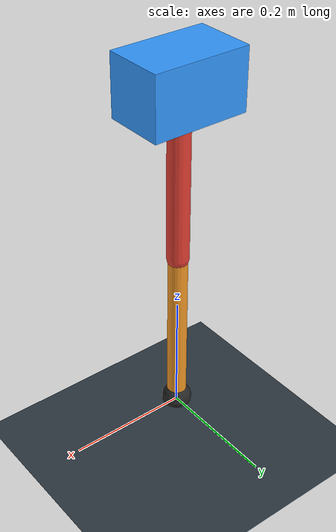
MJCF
<mujoco model="single_axis_two_bar">
  <compiler angle="radian" inertiafromgeom="true"/>
  <option timestep="0.001" integrator="implicitfast" gravity="0 0 -9.81"/>
  <default>
    <joint damping="0.08"/>
    <geom friction="1.2 0.01 0.0001" condim="3"/>
  </default>
  <worldbody>
    <geom name="floor" type="plane" size="5 5 0.1" rgba="0.18 0.22 0.25 1"/>
    <body name="carriage" pos="0 0 0.583506951652395">
      <joint name="pole_slide" type="slide" axis="0 0 1"/>
      <geom name="payload" type="box" size="0.08 0.05 0.05" mass="2.1655172796354534" rgba="0.2 0.6 1 1"/>
      <body name="thigh" pos="0 0 0">
        <joint name="hip" type="hinge" axis="0 1 0"/>
        <geom name="thigh_link" type="capsule" fromto="0 0 0 0 0 -0.2918037682090575" size="0.018" mass="0.20791404069555533" rgba="0.9 0.25 0.2 1"/>
        <body name="shank" pos="0 0 -0.2918037682090575">
          <joint name="knee" type="hinge" axis="0 1 0"/>
          <geom name="shank_link" type="capsule" fromto="0 0 0 0 0 -0.2839765943191847" size="0.016" mass="0.20233707587204317" rgba="0.95 0.6 0.15 1"/>
          <geom name="foot" type="sphere" pos="0 0 -0.2839765943191847" size="0.025" mass="0.03" rgba="0.15 0.15 0.15 1"/>
          <site name="toe" pos="0 0 -0.2839765943191847" size="0.008"/>
        </body>
      </body>
    </body>
  </worldbody>
  <actuator>
    <motor name="hip_motor" joint="hip" ctrlrange="-23.38322382265019 23.38322382265019"/>
    <motor name="knee_motor" joint="knee" ctrlrange="-78.44286909006658 78.44286909006658"/>
  </actuator>
</mujoco>
